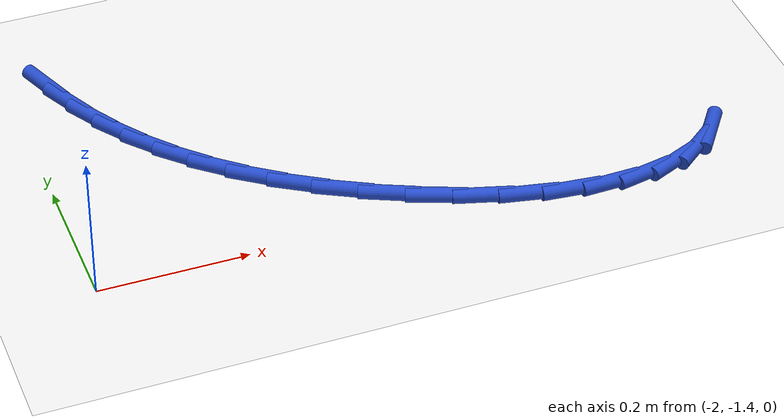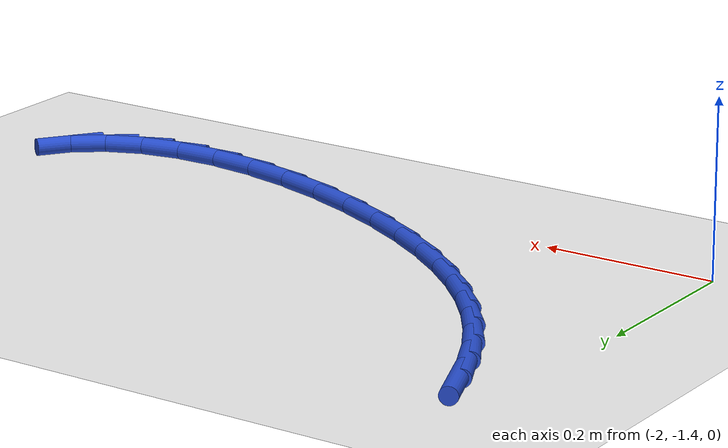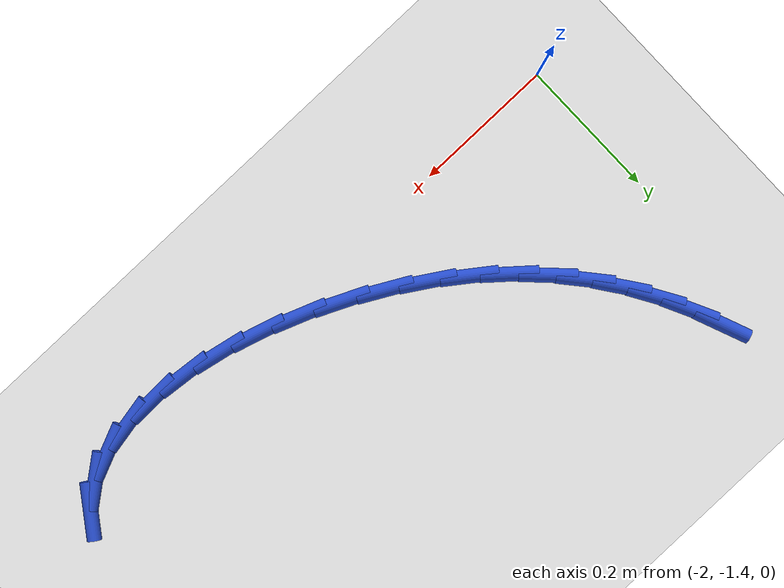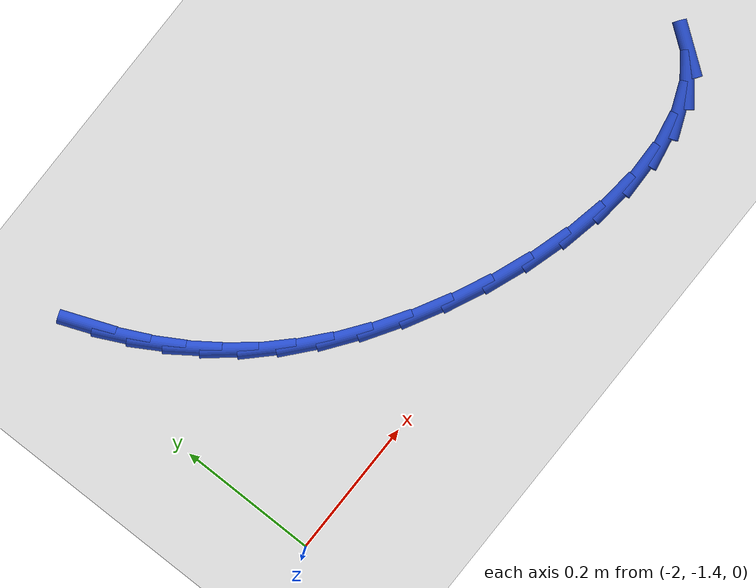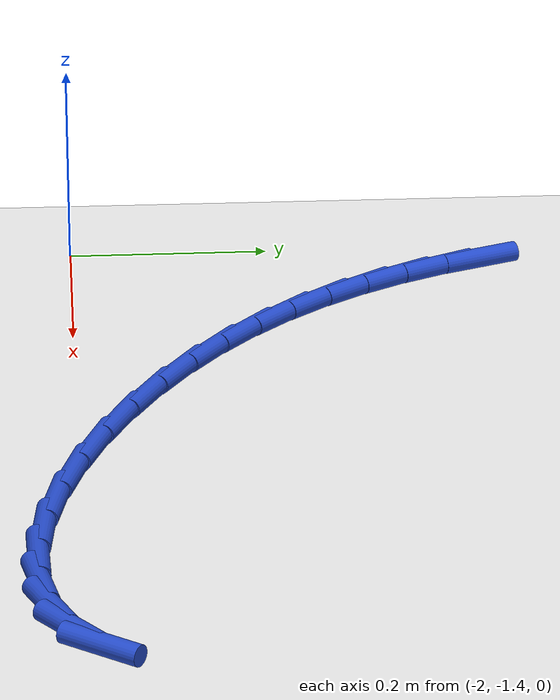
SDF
<sdf version="1.6">
 <world name="default">
  <model name="ground_plane">
   <static>1</static>
   <link name="link">
    <collision name="collision">
     <geometry><plane><normal>0 0 1</normal><size>100 100</size></plane></geometry>
     <surface><friction><ode><mu>100</mu><mu2>50</mu2></ode></friction></surface>
    </collision>
    <visual name="visual">
     <cast_shadows>0</cast_shadows>
     <geometry><plane><normal>0 0 1</normal><size>100 100</size></plane></geometry>
     <material>
      <script><uri>file://media/materials/scripts/gazebo.material</uri><name>Gazebo/WhiteGlow</name></script>
     </material>
    </visual>
   </link>
  </model>
  <model name="line">
   <link name="link_101">
    <pose>-1.949220175683718 -0.98526992235297 0.01 0 1.57 -1.1927419523669363</pose>
    <collision name="collision">
     <geometry><cylinder><radius>0.01</radius><length>0.08</length></cylinder></geometry>
    </collision>
    <visual name="visual">
     <material>
      <script><name>Gazebo/Blue</name><uri>file://media/materials/scripts/gazebo.material</uri></script>
     </material>
     <geometry><cylinder><radius>0.01</radius><length>0.08</length></cylinder></geometry>
    </visual>
   </link>
   <link name="link_102">
    <pose>-1.9314271806730055 -1.0300706678597187 0.01 0 1.57 -1.1145753081560361</pose>
    <collision name="collision">
     <geometry><cylinder><radius>0.01</radius><length>0.08</length></cylinder></geometry>
    </collision>
    <visual name="visual">
     <material>
      <script><name>Gazebo/Blue</name><uri>file://media/materials/scripts/gazebo.material</uri></script>
     </material>
     <geometry><cylinder><radius>0.01</radius><length>0.08</length></cylinder></geometry>
    </visual>
   </link>
   <link name="link_103">
    <pose>-1.9101769357898473 -1.0733721540155297 0.01 0 1.57 -1.0335004245463089</pose>
    <collision name="collision">
     <geometry><cylinder><radius>0.01</radius><length>0.08</length></cylinder></geometry>
    </collision>
    <visual name="visual">
     <material>
      <script><name>Gazebo/Blue</name><uri>file://media/materials/scripts/gazebo.material</uri></script>
     </material>
     <geometry><cylinder><radius>0.01</radius><length>0.08</length></cylinder></geometry>
    </visual>
   </link>
   <link name="link_104">
    <pose>-1.8853057780278237 -1.1151191065749912 0.01 0 1.57 -0.9507721575028247</pose>
    <collision name="collision">
     <geometry><cylinder><radius>0.01</radius><length>0.08</length></cylinder></geometry>
    </collision>
    <visual name="visual">
     <material>
      <script><name>Gazebo/Blue</name><uri>file://media/materials/scripts/gazebo.material</uri></script>
     </material>
     <geometry><cylinder><radius>0.01</radius><length>0.08</length></cylinder></geometry>
    </visual>
   </link>
   <link name="link_105">
    <pose>-1.8566500443805167 -1.1552562512926945 0.01 0 1.57 -0.8677720817143887</pose>
    <collision name="collision">
     <geometry><cylinder><radius>0.01</radius><length>0.08</length></cylinder></geometry>
    </collision>
    <visual name="visual">
     <material>
      <script><name>Gazebo/Blue</name><uri>file://media/materials/scripts/gazebo.material</uri></script>
     </material>
     <geometry><cylinder><radius>0.01</radius><length>0.08</length></cylinder></geometry>
    </visual>
   </link>
   <link name="link_106">
    <pose>-1.8240460718415081 -1.1937283139232302 0.01 0 1.57 -0.7858858867936471</pose>
    <collision name="collision">
     <geometry><cylinder><radius>0.01</radius><length>0.08</length></cylinder></geometry>
    </collision>
    <visual name="visual">
     <material>
      <script><name>Gazebo/Blue</name><uri>file://media/materials/scripts/gazebo.material</uri></script>
     </material>
     <geometry><cylinder><radius>0.01</radius><length>0.08</length></cylinder></geometry>
    </visual>
   </link>
   <link name="link_107">
    <pose>-1.7873301974043796 -1.2304800202211865 0.01 0 1.57 -0.7063796700164636</pose>
    <collision name="collision">
     <geometry><cylinder><radius>0.01</radius><length>0.08</length></cylinder></geometry>
    </collision>
    <visual name="visual">
     <material>
      <script><name>Gazebo/Blue</name><uri>file://media/materials/scripts/gazebo.material</uri></script>
     </material>
     <geometry><cylinder><radius>0.01</radius><length>0.08</length></cylinder></geometry>
    </visual>
   </link>
   <link name="link_108">
    <pose>-1.7463387580627119 -1.2654560959411538 0.01 0 1.57 -0.6303089691267625</pose>
    <collision name="collision">
     <geometry><cylinder><radius>0.01</radius><length>0.08</length></cylinder></geometry>
    </collision>
    <visual name="visual">
     <material>
      <script><name>Gazebo/Blue</name><uri>file://media/materials/scripts/gazebo.material</uri></script>
     </material>
     <geometry><cylinder><radius>0.01</radius><length>0.08</length></cylinder></geometry>
    </visual>
   </link>
   <link name="link_109">
    <pose>-1.7009100738515963 -1.2986003213213693 0.01 0 1.57 -0.5592259375528855</pose>
    <collision name="collision">
     <geometry><cylinder><radius>0.01</radius><length>0.08</length></cylinder></geometry>
    </collision>
    <visual name="visual">
     <material>
      <script><name>Gazebo/Blue</name><uri>file://media/materials/scripts/gazebo.material</uri></script>
     </material>
     <geometry><cylinder><radius>0.01</radius><length>0.08</length></cylinder></geometry>
    </visual>
   </link>
   <link name="link_110">
    <pose>-1.6512494810171257 -1.3296814828703016 0.01 0 1.57 -0.49287631098306606</pose>
    <collision name="collision">
     <geometry><cylinder><radius>0.01</radius><length>0.08</length></cylinder></geometry>
    </collision>
    <visual name="visual">
     <material>
      <script><name>Gazebo/Blue</name><uri>file://media/materials/scripts/gazebo.material</uri></script>
     </material>
     <geometry><cylinder><radius>0.01</radius><length>0.08</length></cylinder></geometry>
    </visual>
   </link>
   <link name="link_111">
    <pose>-1.5983563934738363 -1.3580897499978932 0.01 0 1.57 -0.42761942550628845</pose>
    <collision name="collision">
     <geometry><cylinder><radius>0.01</radius><length>0.08</length></cylinder></geometry>
    </collision>
    <visual name="visual">
     <material>
      <script><name>Gazebo/Blue</name><uri>file://media/materials/scripts/gazebo.material</uri></script>
     </material>
     <geometry><cylinder><radius>0.01</radius><length>0.08</length></cylinder></geometry>
    </visual>
   </link>
   <link name="link_112">
    <pose>-1.5433339300335478 -1.3831658455059344 0.01 0 1.57 -0.3598085248376272</pose>
    <collision name="collision">
     <geometry><cylinder><radius>0.01</radius><length>0.08</length></cylinder></geometry>
    </collision>
    <visual name="visual">
     <material>
      <script><name>Gazebo/Blue</name><uri>file://media/materials/scripts/gazebo.material</uri></script>
     </material>
     <geometry><cylinder><radius>0.01</radius><length>0.08</length></cylinder></geometry>
    </visual>
   </link>
   <link name="link_113">
    <pose>-1.487285209508076 -1.404250492196217 0.01 0 1.57 -0.2855845300377163</pose>
    <collision name="collision">
     <geometry><cylinder><radius>0.01</radius><length>0.08</length></cylinder></geometry>
    </collision>
    <visual name="visual">
     <material>
      <script><name>Gazebo/Blue</name><uri>file://media/materials/scripts/gazebo.material</uri></script>
     </material>
     <geometry><cylinder><radius>0.01</radius><length>0.08</length></cylinder></geometry>
    </visual>
   </link>
   <link name="link_114">
    <pose>-1.4313133507092386 -1.4206844128705318 0.01 0 1.57 -0.20029894524321057</pose>
    <collision name="collision">
     <geometry><cylinder><radius>0.01</radius><length>0.08</length></cylinder></geometry>
    </collision>
    <visual name="visual">
     <material>
      <script><name>Gazebo/Blue</name><uri>file://media/materials/scripts/gazebo.material</uri></script>
     </material>
     <geometry><cylinder><radius>0.01</radius><length>0.08</length></cylinder></geometry>
    </visual>
   </link>
   <link name="link_115">
    <pose>-1.376521472448853 -1.4318083303306706 0.01 0 1.57 -0.09785361972825266</pose>
    <collision name="collision">
     <geometry><cylinder><radius>0.01</radius><length>0.08</length></cylinder></geometry>
    </collision>
    <visual name="visual">
     <material>
      <script><name>Gazebo/Blue</name><uri>file://media/materials/scripts/gazebo.material</uri></script>
     </material>
     <geometry><cylinder><radius>0.01</radius><length>0.08</length></cylinder></geometry>
    </visual>
   </link>
   <link name="link_116">
    <pose>-1.3240126935387355 -1.4369629673784243 0.01 0 1.57 0.029995962277457794</pose>
    <collision name="collision">
     <geometry><cylinder><radius>0.01</radius><length>0.08</length></cylinder></geometry>
    </collision>
    <visual name="visual">
     <material>
      <script><name>Gazebo/Blue</name><uri>file://media/materials/scripts/gazebo.material</uri></script>
     </material>
     <geometry><cylinder><radius>0.01</radius><length>0.08</length></cylinder></geometry>
    </visual>
   </link>
   <link name="link_117">
    <pose>-1.2748901327907063 -1.4354890468155845 0.01 0 1.57 0.19384081919619178</pose>
    <collision name="collision">
     <geometry><cylinder><radius>0.01</radius><length>0.08</length></cylinder></geometry>
    </collision>
    <visual name="visual">
     <material>
      <script><name>Gazebo/Blue</name><uri>file://media/materials/scripts/gazebo.material</uri></script>
     </material>
     <geometry><cylinder><radius>0.01</radius><length>0.08</length></cylinder></geometry>
    </visual>
   </link>
   <link name="link_118">
    <pose>-1.230256909016581 -1.4267272914439426 0.01 0 1.57 0.404396342973148</pose>
    <collision name="collision">
     <geometry><cylinder><radius>0.01</radius><length>0.08</length></cylinder></geometry>
    </collision>
    <visual name="visual">
     <material>
      <script><name>Gazebo/Blue</name><uri>file://media/materials/scripts/gazebo.material</uri></script>
     </material>
     <geometry><cylinder><radius>0.01</radius><length>0.08</length></cylinder></geometry>
    </visual>
   </link>
   <link name="link_119">
    <pose>-1.1912161410281774 -1.4100184240652893 0.01 0 1.57 0.664077356520174</pose>
    <collision name="collision">
     <geometry><cylinder><radius>0.01</radius><length>0.08</length></cylinder></geometry>
    </collision>
    <visual name="visual">
     <material>
      <script><name>Gazebo/Blue</name><uri>file://media/materials/scripts/gazebo.material</uri></script>
     </material>
     <geometry><cylinder><radius>0.01</radius><length>0.08</length></cylinder></geometry>
    </visual>
   </link>
   <link name="link_120">
    <pose>-1.158870947637313 -1.3847031674814168 0.01 0 1.57 0.9450526764042049</pose>
    <collision name="collision">
     <geometry><cylinder><radius>0.01</radius><length>0.08</length></cylinder></geometry>
    </collision>
    <visual name="visual">
     <material>
      <script><name>Gazebo/Blue</name><uri>file://media/materials/scripts/gazebo.material</uri></script>
     </material>
     <geometry><cylinder><radius>0.01</radius><length>0.08</length></cylinder></geometry>
    </visual>
   </link>
  </model>
 </world>
</sdf>
